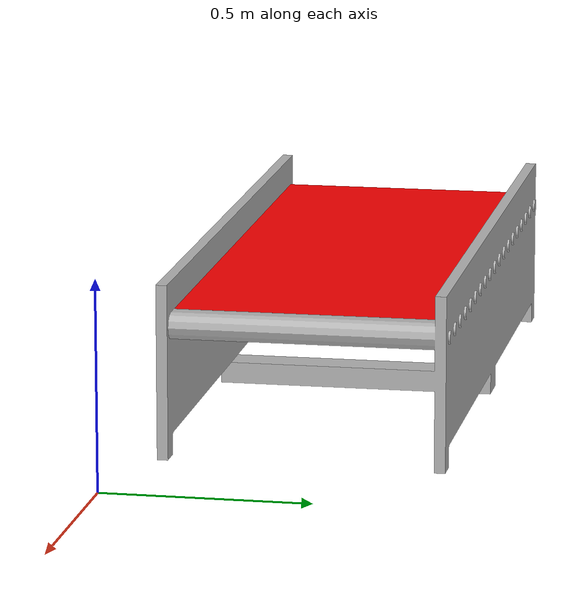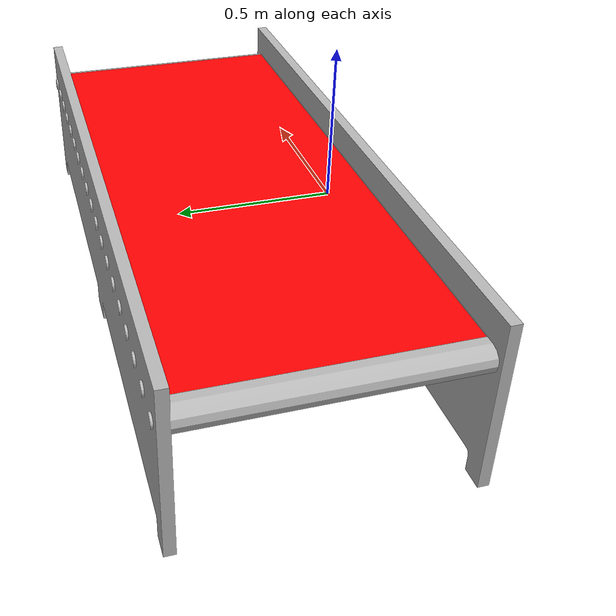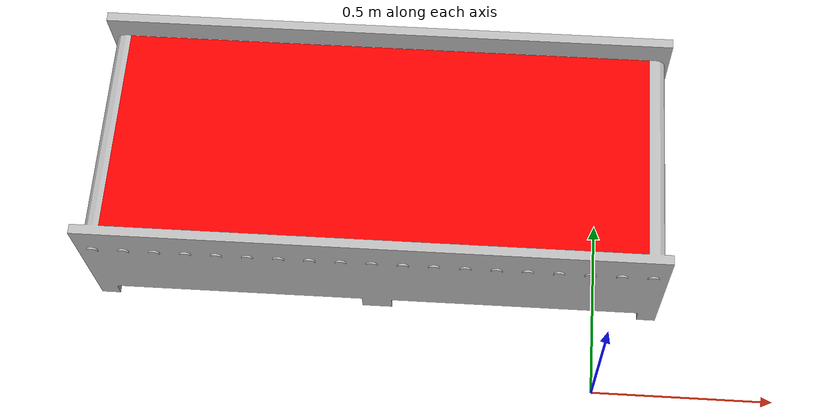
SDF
<?xml version="1.0" ?>

<sdf version="1.4">

    <model name="conveyor_beltt">
    <material name="blue">
        <color rgba="0 0 0.5 1" />
    </material>

        <model name="conveyorbelt_fixed">

	    <pose>-0.6 0.5 0.13 1.571 0 0</pose>
            <static>true</static>

            <link name="belt_visual">
                <visual name="visual">
                    <geometry>
                        <mesh>
                            <scale>1 1 1</scale>
                            <uri>model://conveyorbeltt/meshes/base_link.STL</uri>
                        </mesh>
                    </geometry>
                </visual>
                <collision name="collision">
                    <origin xyz="0.0 0.0 0" rpy="0.0 0.0 0.0"/>
                    <geometry>
                        <mesh>
                            <scale>1 1 1</scale>
                            <uri>model://conveyorbeltt/meshes/base_link.STL</uri>
                        </mesh>
                    </geometry>
                </collision>
            </link>

        </model>

        <model name="conveyorbelt_moving">

            <allow_auto_disable>0</allow_auto_disable>
            <static>false</static>

            <pose>-0.6 0.5 0.465 0 0 1.571</pose>
	    <gazebo reference="conveyorbelt_moving">
        	<material>Gazebo/Blue</material>
    	    </gazebo>
            <link name="belt_moving">
                <inertial>
                    <mass>100.0</mass>
                    <inertia>
                        <ixx>0.0</ixx>
                        <ixy>0.0</ixy>
                        <ixz>0.0</ixz>
                        <iyy>0.0</iyy>
                        <iyz>0.0</iyz>
                        <izz>0.0</izz>
                    </inertia>
                </inertial>
                <collision name="belt_collision">
                    <geometry>
                        <box>
                            <size>0.59 1.41 0.00001</size>
                        </box>
                    </geometry>
                    <surface>
                        <friction>
                            <ode>
                                <mu>100.0</mu>
                                <mu2>100.0</mu2>
                            </ode>
                            <torsional>
                                <coefficient>10.0</coefficient>
                                <patch_radius>0.1</patch_radius>
                            </torsional>
                        </friction>
                    </surface>
                </collision>

                <!-- Added Red Color for this Box -->
                <visual name="belt_visual">
                    <geometry>
                        <box>
                            <size>0.59 1.41 0.00001</size>
                        </box>
                    </geometry>
                    <material>
                        <ambient>1 0 0 1</ambient> <!-- Red Color -->
                        <diffuse>1 0 0 1</diffuse> <!-- Red Color -->
                        <specular>0.5 0.5 0.5 1</specular> <!-- Specular reflection -->
                        <emissive>0 0 0 1</emissive> <!-- No emissive lighting -->
                    </material>
                </visual>

            </link>
            <gazebo reference="belt_moving">
                <material>Gazebo/Blue</material>
    	    </gazebo>

        </model>

        <joint name="belt_joint" type="prismatic">
            <parent>conveyorbelt_fixed::belt_visual</parent>
            <child>conveyorbelt_moving::belt_moving</child>
            <axis>
                <xyz>1 0 0</xyz>
                <limit>
                    <lower>0.0</lower>
                    <upper>0.01</upper>
                </limit>
            </axis>
        </joint>

        <plugin name="ros2_conveyorbelt_plugin" filename="libros2_conveyorbelt_plugin.so" >
            <ros>
                <namespace></namespace>
            </ros>
            <max_velocity>1.0</max_velocity>
            <publish_rate>1000</publish_rate>
        </plugin>

    </model>

</sdf>
